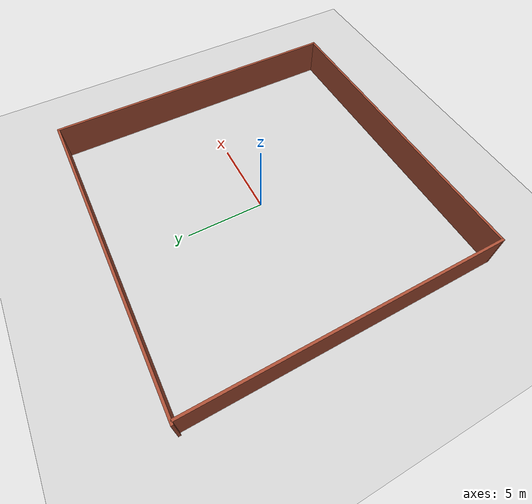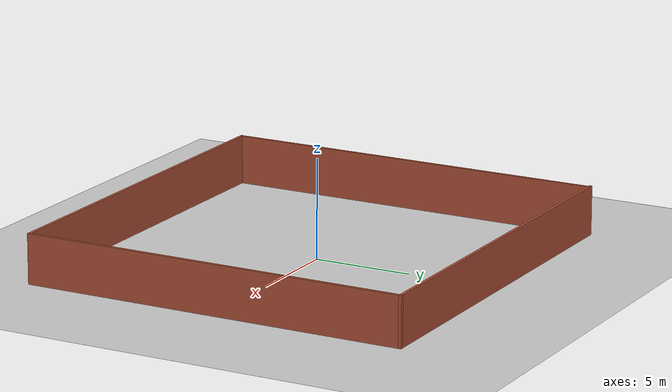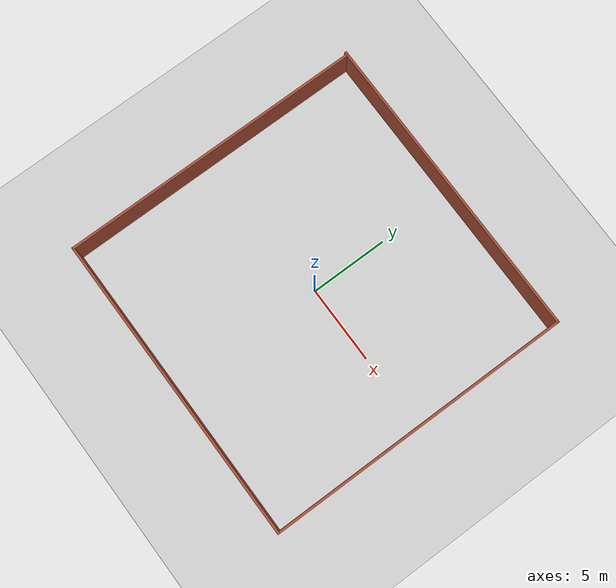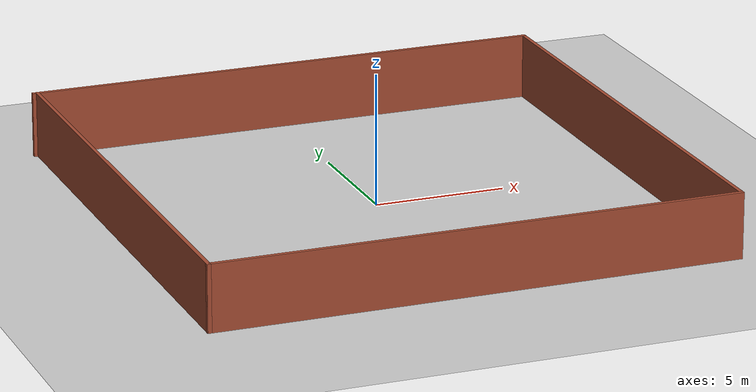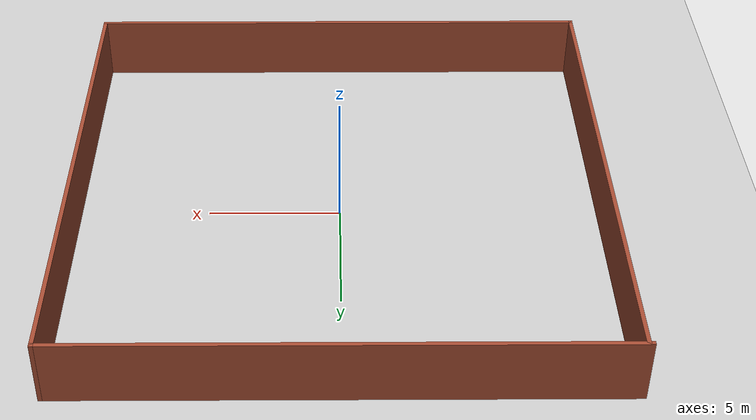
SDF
<sdf version="1.6">
 <world name="default">
  <model name="ground_plane">
   <static>1</static>
   <link name="link">
    <collision name="collision">
     <geometry><plane><normal>0 0 1</normal><size>100 100</size></plane></geometry>
     <surface><friction><ode><mu>100</mu><mu2>50</mu2></ode></friction></surface>
    </collision>
    <visual name="visual">
     <cast_shadows>0</cast_shadows>
     <geometry><plane><normal>0 0 1</normal><size>100 100</size></plane></geometry>
     <material>
      <script><uri>file://media/materials/scripts/gazebo.material</uri><name>Gazebo/Grey</name></script>
     </material>
    </visual>
   </link>
  </model>
  <light name="sun" type="directional">
   <pose>0 0 10 0 -0 0</pose>
   <diffuse>0.8 0.8 0.8 1</diffuse>
   <specular>0.1 0.1 0.1 1</specular>
   <attenuation>
    <range>1000</range>
    <constant>0.9</constant>
    <linear>0.01</linear>
    <quadratic>0.001</quadratic>
   </attenuation>
   <direction>-0.5 0.5 -1</direction>
  </light>
  <gravity>0 0 -9.8</gravity>
  <magnetic_field>6e-06 2.3e-05 -4.2e-05</magnetic_field>
  <atmosphere type="adiabatic"/>
  <physics name="default_physics" default="0" type="ode">
   <max_step_size>0.001</max_step_size>
   <real_time_factor>1</real_time_factor>
   <real_time_update_rate>1000</real_time_update_rate>
  </physics>
  <scene><ambient>0.4 0.4 0.4 1</ambient><background>0.7 0.7 0.7 1</background><shadows>1</shadows></scene>
  <spherical_coordinates>
   <surface_model>EARTH_WGS84</surface_model>
   <latitude_deg>0</latitude_deg>
   <longitude_deg>0</longitude_deg>
   <elevation>0</elevation>
   <heading_deg>0</heading_deg>
  </spherical_coordinates>
  <model name="WallAround">
   <pose>-0.032539 -0.080125 0 0 -0 0</pose>
   <link name="Wall_4">
    <collision name="Wall_4_Collision">
     <geometry><box><size>20 0.15 2.5</size></box></geometry>
     <pose>0 0 1.25 0 -0 0</pose>
    </collision>
    <visual name="Wall_4_Visual">
     <pose>0 0 1.25 0 -0 0</pose>
     <geometry><box><size>20 0.15 2.5</size></box></geometry>
     <material>
      <script><uri>file://media/materials/scripts/gazebo.material</uri><name>Gazebo/Bricks</name></script>
      <ambient>1 1 1 1</ambient>
     </material>
     <meta><layer>0</layer></meta>
    </visual>
    <pose>0.064846 -9.8 0 0 -0 3.14159</pose>
   </link>
   <link name="Wall_6">
    <collision name="Wall_6_Collision">
     <geometry><box><size>19.75 0.15 2.5</size></box></geometry>
     <pose>0 0 1.25 0 -0 0</pose>
    </collision>
    <visual name="Wall_6_Visual">
     <pose>0 0 1.25 0 -0 0</pose>
     <geometry><box><size>19.75 0.15 2.5</size></box></geometry>
     <material>
      <script><uri>file://media/materials/scripts/gazebo.material</uri><name>Gazebo/Bricks</name></script>
      <ambient>1 1 1 1</ambient>
     </material>
     <meta><layer>0</layer></meta>
    </visual>
    <pose>9.98985 0 0 0 -0 1.5708</pose>
   </link>
   <link name="Wall_7">
    <collision name="Wall_7_Collision">
     <geometry><box><size>20.1297 0.15 2.5</size></box></geometry>
     <pose>0 0 1.25 0 -0 0</pose>
    </collision>
    <visual name="Wall_7_Visual">
     <pose>0 0 1.25 0 -0 0</pose>
     <geometry><box><size>20.1297 0.15 2.5</size></box></geometry>
     <material>
      <script><uri>file://media/materials/scripts/gazebo.material</uri><name>Gazebo/Bricks</name></script>
      <ambient>1 1 1 1</ambient>
     </material>
     <meta><layer>0</layer></meta>
    </visual>
    <pose>-1e-06 9.8 0 0 -0 3.14159</pose>
   </link>
   <link name="Wall_8">
    <collision name="Wall_8_Collision">
     <geometry><box><size>19.75 0.15 2.5</size></box></geometry>
     <pose>0 0 1.25 0 -0 0</pose>
    </collision>
    <visual name="Wall_8_Visual">
     <pose>0 0 1.25 0 -0 0</pose>
     <geometry><box><size>19.75 0.15 2.5</size></box></geometry>
     <material>
      <script><uri>file://media/materials/scripts/gazebo.material</uri><name>Gazebo/Bricks</name></script>
      <ambient>1 1 1 1</ambient>
     </material>
     <meta><layer>0</layer></meta>
    </visual>
    <pose>-9.85451 0 0 0 0 -1.5708</pose>
   </link>
   <static>1</static>
  </model>
 </world>
</sdf>
